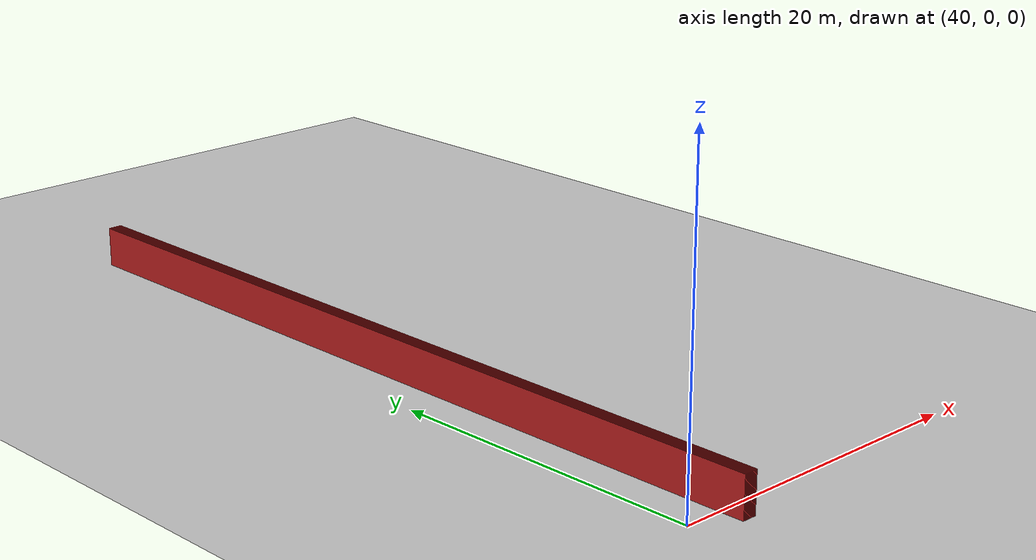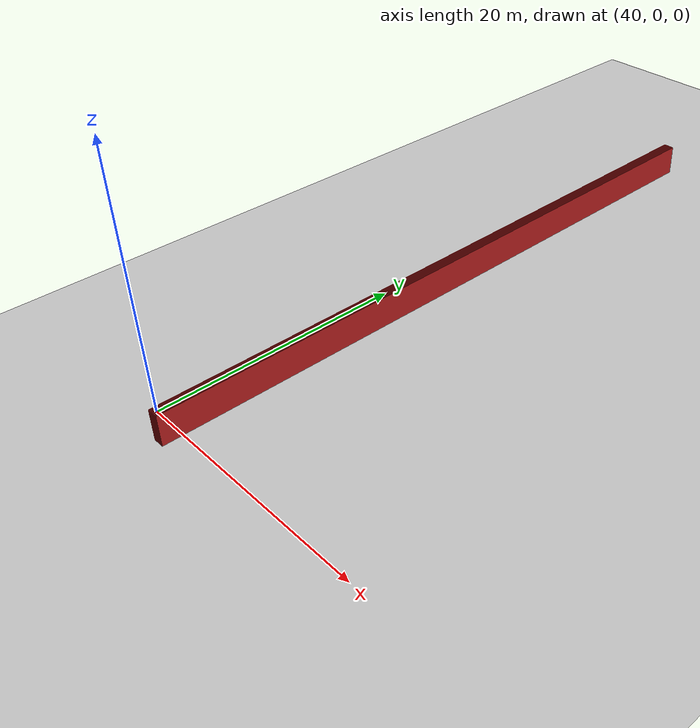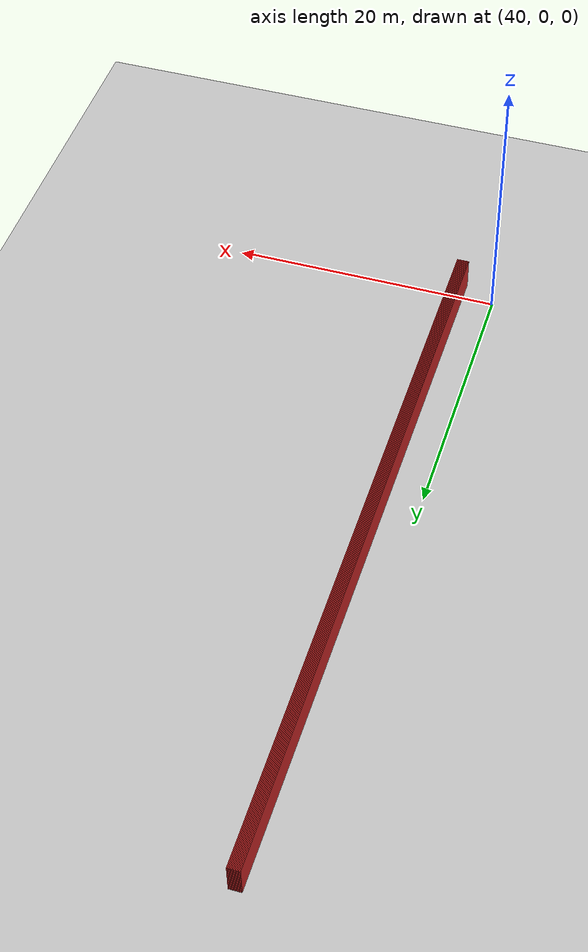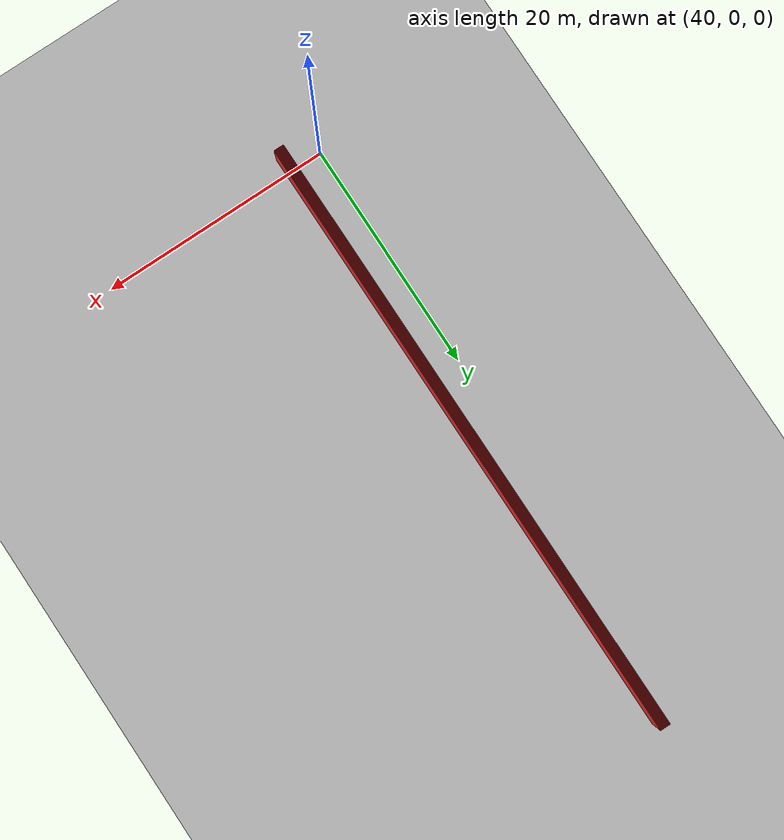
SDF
<sdf version="1.4">
 <world name="1_wall">
  <model name="ground_plane">
   <static>1</static>
   <link name="link">
    <collision name="collision">
     <geometry><plane><normal>0 0 1</normal><size>1000 1000</size></plane></geometry>
     <surface><friction><ode><mu>100</mu><mu2>50</mu2></ode></friction></surface>
    </collision>
    <visual name="visual">
     <cast_shadows>0</cast_shadows>
     <geometry><plane><normal>0 0 1</normal><size>10000 10000</size></plane></geometry>
     <material>
      <script><uri>file://media/materials/scripts/gazebo.material</uri><name>Gazebo/Grey</name></script>
     </material>
    </visual>
    <velocity_decay><linear>0</linear><angular>0</angular></velocity_decay>
   </link>
  </model>
  <model name="Wall_877">
   <static>1</static>
   <link name="Wall_877">
    <collision name="Wall_Collision_877">
     <geometry><box><size>53.65 0.05 2.5</size></box></geometry>
     <pose>0 0 1.25 0 -0 0</pose>
    </collision>
    <visual name="Wall_Visual_877">
     <pose>0 0 1.25 0 -0 0</pose>
     <geometry><box><size>53.65 0.05 2.5</size></box></geometry>
     <material>
      <script><uri>file://media/materials/scripts/gazebo.material</uri><name>Gazebo/Red</name></script>
     </material>
    </visual>
    <velocity_decay><linear>0</linear><angular>0</angular></velocity_decay>
    <pose>42.35 25.3 0 0 0 1.5707963267948966</pose>
   </link>
  </model>
  <model name="Wall_878">
   <static>1</static>
   <link name="Wall_878">
    <collision name="Wall_Collision_878">
     <geometry><box><size>53.65 0.05 2.5</size></box></geometry>
     <pose>0 0 1.25 0 -0 0</pose>
    </collision>
    <visual name="Wall_Visual_878">
     <pose>0 0 1.25 0 -0 0</pose>
     <geometry><box><size>53.65 0.05 2.5</size></box></geometry>
     <material>
      <script><uri>file://media/materials/scripts/gazebo.material</uri><name>Gazebo/Red</name></script>
     </material>
    </visual>
    <velocity_decay><linear>0</linear><angular>0</angular></velocity_decay>
    <pose>42.4 25.3 0 0 0 1.5707963267948966</pose>
   </link>
  </model>
  <model name="Wall_879">
   <static>1</static>
   <link name="Wall_879">
    <collision name="Wall_Collision_879">
     <geometry><box><size>53.65 0.05 2.5</size></box></geometry>
     <pose>0 0 1.25 0 -0 0</pose>
    </collision>
    <visual name="Wall_Visual_879">
     <pose>0 0 1.25 0 -0 0</pose>
     <geometry><box><size>53.65 0.05 2.5</size></box></geometry>
     <material>
      <script><uri>file://media/materials/scripts/gazebo.material</uri><name>Gazebo/Red</name></script>
     </material>
    </visual>
    <velocity_decay><linear>0</linear><angular>0</angular></velocity_decay>
    <pose>42.45 25.3 0 0 0 1.5707963267948966</pose>
   </link>
  </model>
  <model name="Wall_880">
   <static>1</static>
   <link name="Wall_880">
    <collision name="Wall_Collision_880">
     <geometry><box><size>53.65 0.05 2.5</size></box></geometry>
     <pose>0 0 1.25 0 -0 0</pose>
    </collision>
    <visual name="Wall_Visual_880">
     <pose>0 0 1.25 0 -0 0</pose>
     <geometry><box><size>53.65 0.05 2.5</size></box></geometry>
     <material>
      <script><uri>file://media/materials/scripts/gazebo.material</uri><name>Gazebo/Red</name></script>
     </material>
    </visual>
    <velocity_decay><linear>0</linear><angular>0</angular></velocity_decay>
    <pose>42.5 25.3 0 0 0 1.5707963267948966</pose>
   </link>
  </model>
  <model name="Wall_881">
   <static>1</static>
   <link name="Wall_881">
    <collision name="Wall_Collision_881">
     <geometry><box><size>53.65 0.05 2.5</size></box></geometry>
     <pose>0 0 1.25 0 -0 0</pose>
    </collision>
    <visual name="Wall_Visual_881">
     <pose>0 0 1.25 0 -0 0</pose>
     <geometry><box><size>53.65 0.05 2.5</size></box></geometry>
     <material>
      <script><uri>file://media/materials/scripts/gazebo.material</uri><name>Gazebo/Red</name></script>
     </material>
    </visual>
    <velocity_decay><linear>0</linear><angular>0</angular></velocity_decay>
    <pose>42.55 25.3 0 0 0 1.5707963267948966</pose>
   </link>
  </model>
  <model name="Wall_882">
   <static>1</static>
   <link name="Wall_882">
    <collision name="Wall_Collision_882">
     <geometry><box><size>53.65 0.05 2.5</size></box></geometry>
     <pose>0 0 1.25 0 -0 0</pose>
    </collision>
    <visual name="Wall_Visual_882">
     <pose>0 0 1.25 0 -0 0</pose>
     <geometry><box><size>53.65 0.05 2.5</size></box></geometry>
     <material>
      <script><uri>file://media/materials/scripts/gazebo.material</uri><name>Gazebo/Red</name></script>
     </material>
    </visual>
    <velocity_decay><linear>0</linear><angular>0</angular></velocity_decay>
    <pose>42.6 25.3 0 0 0 1.5707963267948966</pose>
   </link>
  </model>
  <model name="Wall_883">
   <static>1</static>
   <link name="Wall_883">
    <collision name="Wall_Collision_883">
     <geometry><box><size>53.65 0.05 2.5</size></box></geometry>
     <pose>0 0 1.25 0 -0 0</pose>
    </collision>
    <visual name="Wall_Visual_883">
     <pose>0 0 1.25 0 -0 0</pose>
     <geometry><box><size>53.65 0.05 2.5</size></box></geometry>
     <material>
      <script><uri>file://media/materials/scripts/gazebo.material</uri><name>Gazebo/Red</name></script>
     </material>
    </visual>
    <velocity_decay><linear>0</linear><angular>0</angular></velocity_decay>
    <pose>42.65 25.3 0 0 0 1.5707963267948966</pose>
   </link>
  </model>
  <model name="Wall_884">
   <static>1</static>
   <link name="Wall_884">
    <collision name="Wall_Collision_884">
     <geometry><box><size>53.65 0.05 2.5</size></box></geometry>
     <pose>0 0 1.25 0 -0 0</pose>
    </collision>
    <visual name="Wall_Visual_884">
     <pose>0 0 1.25 0 -0 0</pose>
     <geometry><box><size>53.65 0.05 2.5</size></box></geometry>
     <material>
      <script><uri>file://media/materials/scripts/gazebo.material</uri><name>Gazebo/Red</name></script>
     </material>
    </visual>
    <velocity_decay><linear>0</linear><angular>0</angular></velocity_decay>
    <pose>42.7 25.3 0 0 0 1.5707963267948966</pose>
   </link>
  </model>
  <model name="Wall_885">
   <static>1</static>
   <link name="Wall_885">
    <collision name="Wall_Collision_885">
     <geometry><box><size>53.65 0.05 2.5</size></box></geometry>
     <pose>0 0 1.25 0 -0 0</pose>
    </collision>
    <visual name="Wall_Visual_885">
     <pose>0 0 1.25 0 -0 0</pose>
     <geometry><box><size>53.65 0.05 2.5</size></box></geometry>
     <material>
      <script><uri>file://media/materials/scripts/gazebo.material</uri><name>Gazebo/Red</name></script>
     </material>
    </visual>
    <velocity_decay><linear>0</linear><angular>0</angular></velocity_decay>
    <pose>42.75 25.3 0 0 0 1.5707963267948966</pose>
   </link>
  </model>
  <model name="Wall_886">
   <static>1</static>
   <link name="Wall_886">
    <collision name="Wall_Collision_886">
     <geometry><box><size>53.65 0.05 2.5</size></box></geometry>
     <pose>0 0 1.25 0 -0 0</pose>
    </collision>
    <visual name="Wall_Visual_886">
     <pose>0 0 1.25 0 -0 0</pose>
     <geometry><box><size>53.65 0.05 2.5</size></box></geometry>
     <material>
      <script><uri>file://media/materials/scripts/gazebo.material</uri><name>Gazebo/Red</name></script>
     </material>
    </visual>
    <velocity_decay><linear>0</linear><angular>0</angular></velocity_decay>
    <pose>42.8 25.3 0 0 0 1.5707963267948966</pose>
   </link>
  </model>
  <model name="Wall_887">
   <static>1</static>
   <link name="Wall_887">
    <collision name="Wall_Collision_887">
     <geometry><box><size>53.65 0.05 2.5</size></box></geometry>
     <pose>0 0 1.25 0 -0 0</pose>
    </collision>
    <visual name="Wall_Visual_887">
     <pose>0 0 1.25 0 -0 0</pose>
     <geometry><box><size>53.65 0.05 2.5</size></box></geometry>
     <material>
      <script><uri>file://media/materials/scripts/gazebo.material</uri><name>Gazebo/Red</name></script>
     </material>
    </visual>
    <velocity_decay><linear>0</linear><angular>0</angular></velocity_decay>
    <pose>42.85 25.3 0 0 0 1.5707963267948966</pose>
   </link>
  </model>
  <model name="Wall_888">
   <static>1</static>
   <link name="Wall_888">
    <collision name="Wall_Collision_888">
     <geometry><box><size>53.65 0.05 2.5</size></box></geometry>
     <pose>0 0 1.25 0 -0 0</pose>
    </collision>
    <visual name="Wall_Visual_888">
     <pose>0 0 1.25 0 -0 0</pose>
     <geometry><box><size>53.65 0.05 2.5</size></box></geometry>
     <material>
      <script><uri>file://media/materials/scripts/gazebo.material</uri><name>Gazebo/Red</name></script>
     </material>
    </visual>
    <velocity_decay><linear>0</linear><angular>0</angular></velocity_decay>
    <pose>42.9 25.3 0 0 0 1.5707963267948966</pose>
   </link>
  </model>
  <model name="Wall_889">
   <static>1</static>
   <link name="Wall_889">
    <collision name="Wall_Collision_889">
     <geometry><box><size>53.65 0.05 2.5</size></box></geometry>
     <pose>0 0 1.25 0 -0 0</pose>
    </collision>
    <visual name="Wall_Visual_889">
     <pose>0 0 1.25 0 -0 0</pose>
     <geometry><box><size>53.65 0.05 2.5</size></box></geometry>
     <material>
      <script><uri>file://media/materials/scripts/gazebo.material</uri><name>Gazebo/Red</name></script>
     </material>
    </visual>
    <velocity_decay><linear>0</linear><angular>0</angular></velocity_decay>
    <pose>42.95 25.3 0 0 0 1.5707963267948966</pose>
   </link>
  </model>
  <model name="Wall_890">
   <static>1</static>
   <link name="Wall_890">
    <collision name="Wall_Collision_890">
     <geometry><box><size>53.65 0.05 2.5</size></box></geometry>
     <pose>0 0 1.25 0 -0 0</pose>
    </collision>
    <visual name="Wall_Visual_890">
     <pose>0 0 1.25 0 -0 0</pose>
     <geometry><box><size>53.65 0.05 2.5</size></box></geometry>
     <material>
      <script><uri>file://media/materials/scripts/gazebo.material</uri><name>Gazebo/Red</name></script>
     </material>
    </visual>
    <velocity_decay><linear>0</linear><angular>0</angular></velocity_decay>
    <pose>43.0 25.3 0 0 0 1.5707963267948966</pose>
   </link>
  </model>
  <model name="Wall_891">
   <static>1</static>
   <link name="Wall_891">
    <collision name="Wall_Collision_891">
     <geometry><box><size>53.65 0.05 2.5</size></box></geometry>
     <pose>0 0 1.25 0 -0 0</pose>
    </collision>
    <visual name="Wall_Visual_891">
     <pose>0 0 1.25 0 -0 0</pose>
     <geometry><box><size>53.65 0.05 2.5</size></box></geometry>
     <material>
      <script><uri>file://media/materials/scripts/gazebo.material</uri><name>Gazebo/Red</name></script>
     </material>
    </visual>
    <velocity_decay><linear>0</linear><angular>0</angular></velocity_decay>
    <pose>43.05 25.3 0 0 0 1.5707963267948966</pose>
   </link>
  </model>
  <model name="Wall_892">
   <static>1</static>
   <link name="Wall_892">
    <collision name="Wall_Collision_892">
     <geometry><box><size>53.65 0.05 2.5</size></box></geometry>
     <pose>0 0 1.25 0 -0 0</pose>
    </collision>
    <visual name="Wall_Visual_892">
     <pose>0 0 1.25 0 -0 0</pose>
     <geometry><box><size>53.65 0.05 2.5</size></box></geometry>
     <material>
      <script><uri>file://media/materials/scripts/gazebo.material</uri><name>Gazebo/Red</name></script>
     </material>
    </visual>
    <velocity_decay><linear>0</linear><angular>0</angular></velocity_decay>
    <pose>43.1 25.3 0 0 0 1.5707963267948966</pose>
   </link>
  </model>
  <model name="Wall_893">
   <static>1</static>
   <link name="Wall_893">
    <collision name="Wall_Collision_893">
     <geometry><box><size>53.65 0.05 2.5</size></box></geometry>
     <pose>0 0 1.25 0 -0 0</pose>
    </collision>
    <visual name="Wall_Visual_893">
     <pose>0 0 1.25 0 -0 0</pose>
     <geometry><box><size>53.65 0.05 2.5</size></box></geometry>
     <material>
      <script><uri>file://media/materials/scripts/gazebo.material</uri><name>Gazebo/Red</name></script>
     </material>
    </visual>
    <velocity_decay><linear>0</linear><angular>0</angular></velocity_decay>
    <pose>43.15 25.3 0 0 0 1.5707963267948966</pose>
   </link>
  </model>
  <model name="Wall_894">
   <static>1</static>
   <link name="Wall_894">
    <collision name="Wall_Collision_894">
     <geometry><box><size>53.65 0.05 2.5</size></box></geometry>
     <pose>0 0 1.25 0 -0 0</pose>
    </collision>
    <visual name="Wall_Visual_894">
     <pose>0 0 1.25 0 -0 0</pose>
     <geometry><box><size>53.65 0.05 2.5</size></box></geometry>
     <material>
      <script><uri>file://media/materials/scripts/gazebo.material</uri><name>Gazebo/Red</name></script>
     </material>
    </visual>
    <velocity_decay><linear>0</linear><angular>0</angular></velocity_decay>
    <pose>43.2 25.3 0 0 0 1.5707963267948966</pose>
   </link>
  </model>
 </world>
</sdf>
